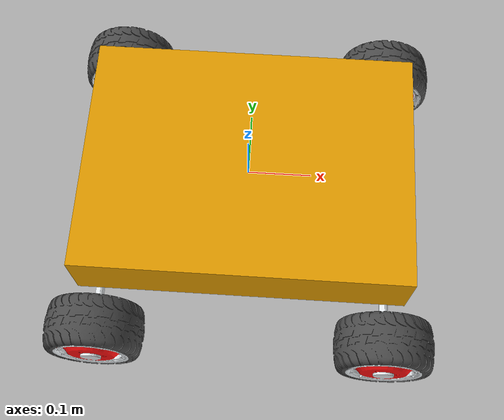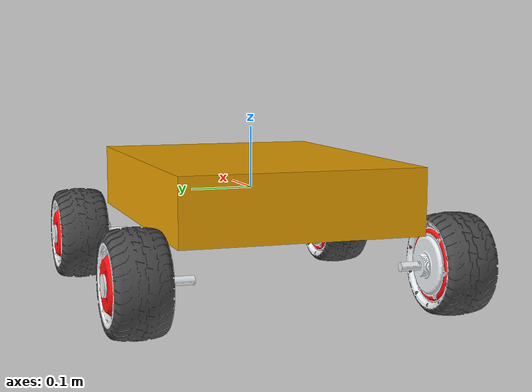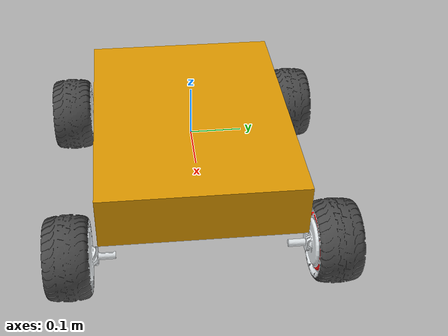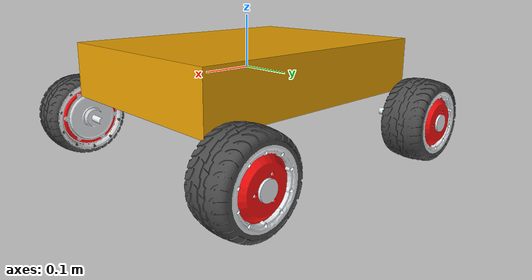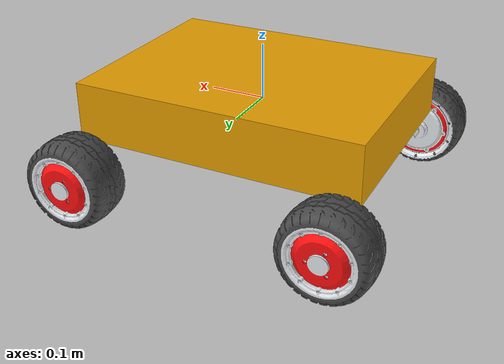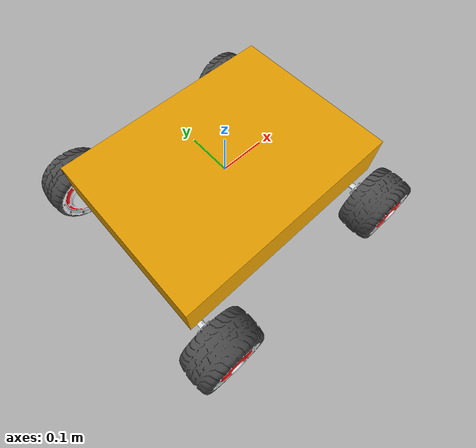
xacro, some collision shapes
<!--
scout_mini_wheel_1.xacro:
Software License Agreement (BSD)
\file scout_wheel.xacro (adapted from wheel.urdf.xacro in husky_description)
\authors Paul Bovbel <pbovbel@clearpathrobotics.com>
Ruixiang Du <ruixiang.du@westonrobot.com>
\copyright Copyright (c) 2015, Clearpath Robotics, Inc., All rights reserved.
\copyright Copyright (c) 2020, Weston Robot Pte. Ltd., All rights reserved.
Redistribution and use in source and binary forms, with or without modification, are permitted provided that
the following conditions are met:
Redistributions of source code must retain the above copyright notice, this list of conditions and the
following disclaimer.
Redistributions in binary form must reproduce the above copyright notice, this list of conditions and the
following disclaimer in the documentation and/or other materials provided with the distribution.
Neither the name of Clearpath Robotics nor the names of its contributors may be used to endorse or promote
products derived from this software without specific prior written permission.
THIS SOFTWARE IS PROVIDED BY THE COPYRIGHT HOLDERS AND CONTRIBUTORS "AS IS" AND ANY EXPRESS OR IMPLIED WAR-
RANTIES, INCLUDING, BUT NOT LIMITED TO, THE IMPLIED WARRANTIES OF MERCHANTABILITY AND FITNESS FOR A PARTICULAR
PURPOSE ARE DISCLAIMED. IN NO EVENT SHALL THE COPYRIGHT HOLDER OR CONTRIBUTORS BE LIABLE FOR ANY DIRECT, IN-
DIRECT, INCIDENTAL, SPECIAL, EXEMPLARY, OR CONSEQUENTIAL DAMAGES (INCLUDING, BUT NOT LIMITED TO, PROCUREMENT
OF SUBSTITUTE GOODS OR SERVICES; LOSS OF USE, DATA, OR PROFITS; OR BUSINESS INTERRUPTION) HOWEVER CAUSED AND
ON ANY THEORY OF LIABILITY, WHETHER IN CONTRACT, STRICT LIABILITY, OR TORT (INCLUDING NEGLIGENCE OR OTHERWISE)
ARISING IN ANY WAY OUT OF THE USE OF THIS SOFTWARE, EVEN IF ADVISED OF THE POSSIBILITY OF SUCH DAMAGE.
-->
<?xml version="1.0"?>

<robot name="scout_mini"
    xmlns:xacro="http://ros.org/wiki/xacro">

    <xacro:arg name="robot_namespace" default="/" />
    <xacro:arg name="urdf_extras" default="empty.urdf" />

    <xacro:include filename="$(find scout_description)/urdf/scout_mini_wheel_1.xacro" />
    <xacro:include filename="$(find scout_description)/urdf/scout_mini_wheel_2.xacro" />
    <xacro:include filename="$(find scout_description)/urdf/scout_mini_wheel_3.xacro" />
    <xacro:include filename="$(find scout_description)/urdf/scout_mini_wheel_4.xacro" />

    <!-- Variables -->
    <xacro:property name="M_PI" value="3.14159"/>

    <!-- Vehicle Geometries -->
    <xacro:property name="base_x_size" value="0.514618" />
    <xacro:property name="base_y_size" value="0.3816" />
    <xacro:property name="base_z_size" value="0.10357" />

    <xacro:property name="wheelbase" value="0.463951"/>
    <xacro:property name="track" value="0.416503"/>
    <xacro:property name="wheel_vertical_offset" value="-0.100998" />

    <xacro:property name="wheel_length" value="0.08" />
    <xacro:property name="wheel_radius" value="0.08" />

    <!-- Base link -->
    <link name="base_link">
        <visual>
            <origin
                    xyz="0 0 0.0"
                    rpy="1.57 0 -1.57" />
            <geometry>
                <mesh filename="package://scout_description/meshes/scout_mini_base_link2.dae" />
            </geometry>
        </visual>
        <collision>
            <origin
                    xyz="0 0 0"
                    rpy="0 0 0" />
          <geometry>
              <box size="${base_x_size} ${base_y_size} ${base_z_size}"/>

          </geometry>
        </collision>
    </link>

    <link name="inertial_link">
        <inertial>
            <mass value="60" />
            <origin xyz="0.0 0.0 0.0" />
            <inertia ixx="2.288641" ixy="0" ixz="0" iyy="5.103976" iyz="0" izz="3.431465" />
        </inertial>
    </link>

    <joint name="inertial_joint" type="fixed">
        <origin xyz="0 0 0" rpy="0 0 0" />
        <parent link="base_link" />
        <child link="inertial_link" />
    </joint>

    <!-- For testing, hang the robot up in the air -->

    <!-- Scout wheel macros -->
    <!-- wheel labeled from 0 to 3, conter-clockwise, starting from front right wheel -->
    <!-- motor 1 and 2 (left side) are mechanically installed in a reversed direction -->
    <xacro:scout_mini_wheel_1 wheel_prefix="front_left">
        <origin xyz="${wheelbase/2} ${track/2} ${wheel_vertical_offset}" rpy="-1.57 0 0" />
    </xacro:scout_mini_wheel_1>
    <xacro:scout_mini_wheel_2 wheel_prefix="rear_left">
        <origin xyz="${-wheelbase/2} ${track/2} ${wheel_vertical_offset}" rpy="-1.57 0 0" />
    </xacro:scout_mini_wheel_2>
    <xacro:scout_mini_wheel_3 wheel_prefix="front_right">
        <origin xyz="${wheelbase/2} ${-track/2} ${wheel_vertical_offset+0.001}" rpy="1.57 0 0" />
    </xacro:scout_mini_wheel_3>
    <xacro:scout_mini_wheel_4 wheel_prefix="rear_right">
        <origin xyz="${-wheelbase/2} ${-track/2} ${wheel_vertical_offset+0.001}" rpy="1.57 0 0" />
    </xacro:scout_mini_wheel_4>

    <!-- Additional definitions -->
    <xacro:include filename="$(arg urdf_extras)" />

    <!-- Gazebo definitions  -->
    <xacro:include filename="$(find scout_description)/urdf/scout_mini.gazebo" />
</robot>

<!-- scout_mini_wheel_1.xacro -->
<robot xmlns:xacro="http://ros.org/wiki/xacro" name="scout_wheel">

    <xacro:macro name="scout_mini_wheel_1" params="wheel_prefix *joint_pose">
        <link name="${wheel_prefix}_wheel_link">
            <inertial>
                <mass value="15" />
                <origin xyz="0 0 0" />
                <inertia ixx="0.6171" ixy="0" ixz="0" iyy="0.6171" iyz="0" izz="0.1361" />
            </inertial>
            <visual>
                <origin xyz="0 0 0" rpy="0 0 0" />
                <geometry>
                    <mesh filename="package://scout_description/meshes/wheel.dae" />

                </geometry>
            </visual>
            <collision>
              <origin
                xyz="0 0 0.04"
                rpy="0 0 0" />
              <geometry>
                  <cylinder length="${wheel_length}" radius="${wheel_radius}" />
              </geometry>
            </collision>
        </link>

        <joint name="${wheel_prefix}_wheel" type="continuous">
            <parent link="base_link"/>
            <child link="${wheel_prefix}_wheel_link"/>
            <xacro:insert_block name="joint_pose"/>
            <axis xyz="0 0 -1" rpy="0 0 0" />
        </joint>
    </xacro:macro>

</robot>

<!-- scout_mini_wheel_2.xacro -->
<robot xmlns:xacro="http://ros.org/wiki/xacro" name="scout_wheel">

    <xacro:macro name="scout_mini_wheel_2" params="wheel_prefix *joint_pose">
        <link name="${wheel_prefix}_wheel_link">
            <inertial>
                <mass value="15" />
                <origin xyz="0 0 0" />
                <inertia ixx="0.6171" ixy="0" ixz="0" iyy="0.6171" iyz="0" izz="0.1361" />
            </inertial>
            <visual>
                <origin xyz="0 0 0" rpy="0 0 0" />
                <geometry>
                    <mesh filename="package://scout_description/meshes/wheel.dae" />
                </geometry>
            </visual>
            <collision>
              <origin
                xyz="0 0 0.04"
                rpy="0 0 0" />
              <geometry>
                  <cylinder length="${wheel_length}" radius="${wheel_radius}" />
              </geometry>
            </collision>
        </link>

        <joint name="${wheel_prefix}_wheel" type="continuous">
            <parent link="base_link"/>
            <child link="${wheel_prefix}_wheel_link"/>
            <xacro:insert_block name="joint_pose"/>
            <axis xyz="0 0 -1" rpy="0 0 0" />
        </joint>
    </xacro:macro>

</robot>

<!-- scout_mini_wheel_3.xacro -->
<robot xmlns:xacro="http://ros.org/wiki/xacro" name="scout_wheel">

    <xacro:macro name="scout_mini_wheel_3" params="wheel_prefix *joint_pose">
        <link name="${wheel_prefix}_wheel_link">
            <inertial>
                <mass value="15" />
                <origin xyz="0 0 0" />
                <inertia ixx="0.6171" ixy="0" ixz="0" iyy="0.6171" iyz="0" izz="0.1361" />
            </inertial>
            <visual>
                <origin xyz="0 0 0" rpy="0 0 0" />
                <geometry>
                    <mesh filename="package://scout_description/meshes/wheel.dae" />
                </geometry>
            </visual>
            <collision>
              <origin
                xyz="0 0 0.04"
                rpy="0 0 0" />
              <geometry>
                  <cylinder length="${wheel_length}" radius="${wheel_radius}" />
              </geometry>
            </collision>
        </link>

        <joint name="${wheel_prefix}_wheel" type="continuous">
            <parent link="base_link"/>
            <child link="${wheel_prefix}_wheel_link"/>
            <xacro:insert_block name="joint_pose"/>
            <axis xyz="0 0 -1" rpy="0 0 0" />
        </joint>
    </xacro:macro>

</robot>

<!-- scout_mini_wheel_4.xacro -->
<robot xmlns:xacro="http://ros.org/wiki/xacro" name="scout_wheel">

    <xacro:macro name="scout_mini_wheel_4" params="wheel_prefix *joint_pose">
        <link name="${wheel_prefix}_wheel_link">
        <inertial>
            <mass value="15" />
            <origin xyz="0 0 0" />
            <inertia ixx="0.6171" ixy="0" ixz="0" iyy="0.6171" iyz="0" izz="0.1361" />
        </inertial>
        <visual>
            <origin xyz="0 0 0" rpy="0 0 0" />
            <geometry>
                <mesh filename="package://scout_description/meshes/wheel.dae" />
            </geometry>
        </visual>
            <collision>
              <origin
                xyz="0 0 0.04"
                rpy="0 0 0" />
              <geometry>
                  <cylinder length="${wheel_length}" radius="${wheel_radius}" />
              </geometry>
            </collision>
        </link>

        <joint name="${wheel_prefix}_wheel" type="continuous">
            <parent link="base_link"/>
            <child link="${wheel_prefix}_wheel_link"/>
            <xacro:insert_block name="joint_pose"/>
            <axis xyz="0 0 -1" rpy="0 0 0" />
        </joint>
    </xacro:macro>

</robot>
